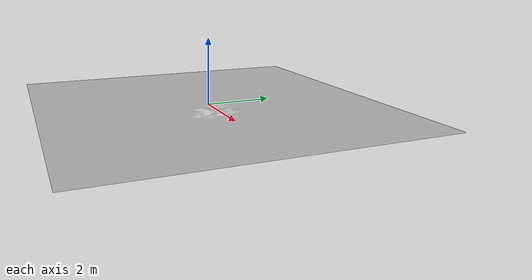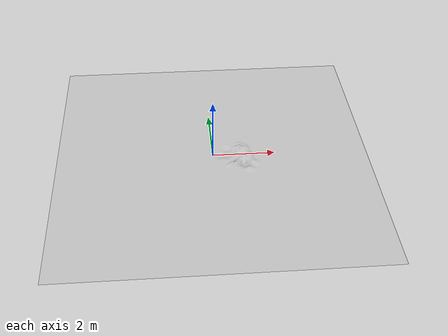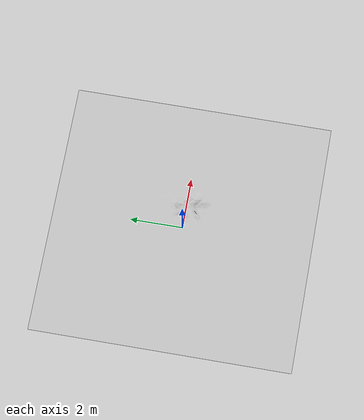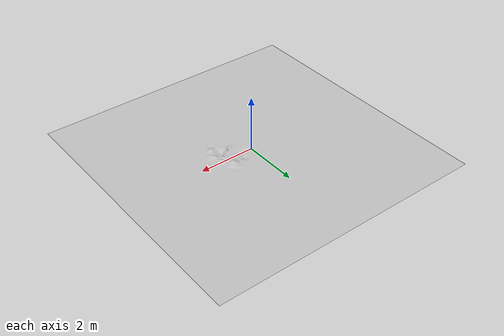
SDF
<sdf version='1.6'>
  <world name='default'>
    <include>
      <uri>model://sun</uri>
    </include>

    <include>
      <name>gait_switch_world</name>
      <uri>model://gait_switch_world</uri>
      <pose>0 0 0 0 0 0</pose>
    </include>

    <gui fullscreen='0'>
      <camera name='user_camera'>
        <pose frame=''>9.0 -12.0 6.0 0.0 0.3 2.2</pose>
        <view_controller>orbit</view_controller>
        <projection_type>perspective</projection_type>
      </camera>
    </gui>

  </world>
</sdf>

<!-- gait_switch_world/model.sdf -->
<sdf version="1.5">
  <model name="gait_switch_world">
    <pose>0 0 0 0 0 0</pose>
    <static>true</static>
    <link name="body">
      <visual name="visual">
        <geometry>
          <mesh><uri>model://gait_switch_world/media/test_world.dae</uri></mesh>
        </geometry>

      </visual>
      <collision name="collision">
        <geometry>
          <mesh><uri>model://gait_switch_world/media/test_world.dae</uri></mesh>
        </geometry>
      </collision>
    </link>
  </model>
</sdf>
